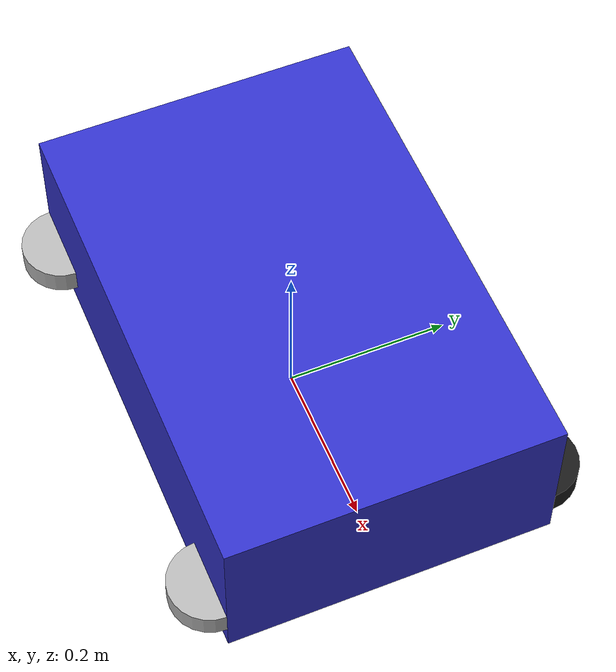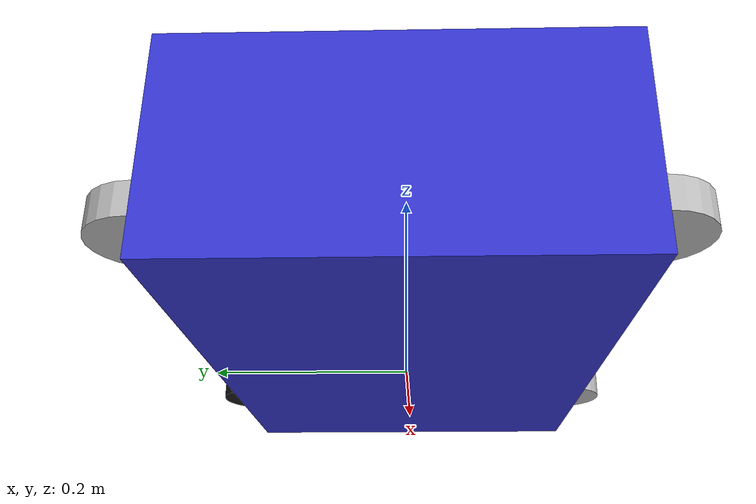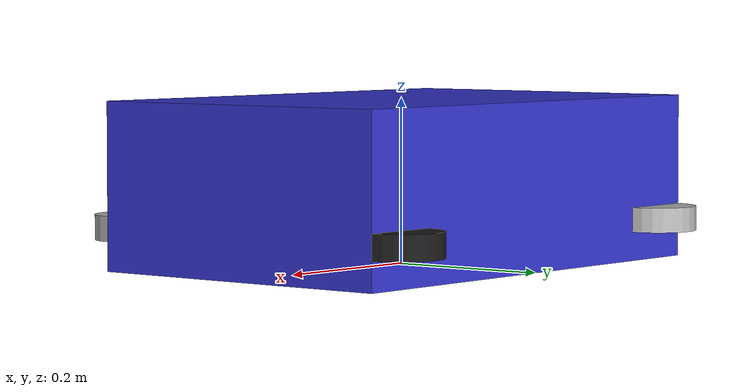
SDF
<?xml version="1.0" ?>
<sdf version="1.9">
  <model name="four_wheel_robot">
    <static>false</static>

    <plugin
      filename="libignition-gazebo-diff-drive-system.so"
      name="ignition::gazebo::systems::DiffDrive">

      <left_joint>rear_left_wheel_joint</left_joint>
      <right_joint>rear_right_wheel_joint</right_joint>

      <wheel_separation>0.5</wheel_separation>
      <wheel_radius>0.05</wheel_radius>

      <topic>cmd_vel</topic>
      <odom_topic>odom</odom_topic>
      <tf_topic>tf</tf_topic>
      <frame_id>odom</frame_id>
      <child_frame_id>base_link</child_frame_id>
    </plugin>

    <link name="base_link">
      <pose>0 0 0.1 0 0 0</pose>
      <inertial>
        <mass>5.0</mass>
        <inertia>
          <ixx>0.2</ixx> <iyy>0.2</iyy> <izz>0.2</izz>
        </inertia>
      </inertial>
      <collision name="base_collision">
        <geometry>
          <box>
            <size>0.6 0.4 0.2</size>
          </box>
        </geometry>
      </collision>
      <visual name="base_visual">
        <geometry>
          <box>
            <size>0.6 0.4 0.2</size>
          </box>
        </geometry>
        <material>
          <ambient>0.2 0.2 0.8 1</ambient>
          <diffuse>0.2 0.2 0.8 1</diffuse>
        </material>
      </visual>

      <sensor name='gpu_lidar' type='gpu_lidar'>
        <pose>0 0 0 0 0 0</pose>
        <topic>lidar</topic>
        <update_rate>10</update_rate>
        <ray>
          <scan>
            <horizontal>
              <samples>192</samples>
              <resolution>1</resolution>
              <min_angle>-1.0472</min_angle>
              <max_angle>1.0472</max_angle>
            </horizontal>
            <vertical>
              <samples>1</samples>
              <resolution>1</resolution>
              <min_angle>0</min_angle>
              <max_angle>0</max_angle>
            </vertical>
          </scan>
          <range>
            <min>0.1</min>
            <max>75.0</max>
            <resolution>0.01</resolution>
          </range>
          <noise>
            <type>gaussian</type>
            <mean>0.0</mean>
            <stddev>0.01</stddev>
          </noise>
        </ray>
        <always_on>1</always_on>
        <visualize>true</visualize>
      </sensor>

      <sensor name="imu_sensor" type="imu">
        <always_on>1</always_on>
        <update_rate>1</update_rate>
        <visualize>true</visualize>
        <topic>imu</topic>
      </sensor>
    </link>

    <link name="wheel_fl">
      <pose>0.25 0.20 0.05 0 0 0</pose>
      <inertial>
        <mass>0.2</mass>
        <inertia>
          <ixx>0.001</ixx> <iyy>0.001</iyy> <izz>0.001</izz>
        </inertia>
      </inertial>
      <collision name="collision">
        <geometry><cylinder><radius>0.05</radius><length>0.03</length></cylinder></geometry>
      </collision>
      <visual name="visual">
        <geometry><cylinder><radius>0.05</radius><length>0.03</length></cylinder></geometry>
        <material><diffuse>0.1 0.1 0.1 1</diffuse></material>
      </visual>
    </link>

    <link name="wheel_fr">
      <pose>0.25 -0.20 0.05 0 0 0</pose>
      <collision name="collision">
        <geometry><cylinder><radius>0.05</radius><length>0.03</length></cylinder></geometry>
      </collision>
      <visual name="visual">
        <geometry><cylinder><radius>0.05</radius><length>0.03</length></cylinder></geometry>
      </visual>
    </link>

    <link name="wheel_rl">
      <pose>-0.25 0.20 0.05 0 0 0</pose>
      <collision name="collision">
        <geometry><cylinder><radius>0.05</radius><length>0.03</length></cylinder></geometry>
      </collision>
      <visual name="visual">
        <geometry><cylinder><radius>0.05</radius><length>0.03</length></cylinder></geometry>
      </visual>
    </link>

    <link name="wheel_rr">
      <pose>-0.25 -0.20 0.05 0 0 0</pose>
      <collision name="collision">
        <geometry><cylinder><radius>0.05</radius><length>0.03</length></cylinder></geometry>
      </collision>
      <visual name="visual">
        <geometry><cylinder><radius>0.05</radius><length>0.03</length></cylinder></geometry>
      </visual>
    </link>

    <joint name="rear_left_wheel_joint" type="revolute">
      <parent>base_link</parent>
      <child>wheel_rl</child>
      <axis>
        <xyz>0 1 0</xyz>
      </axis>
    </joint>

    <joint name="rear_right_wheel_joint" type="revolute">
      <parent>base_link</parent>
      <child>wheel_rr</child>
      <axis>
        <xyz>0 1 0</xyz>
      </axis>
    </joint>

    <joint name="front_left_steer_joint" type="ball">
      <parent>base_link</parent>
      <child>wheel_fl</child>
    </joint>

    <joint name="front_right_steer_joint" type="ball">
      <parent>base_link</parent>
      <child>wheel_fr</child>
    </joint>

  </model>
</sdf>
